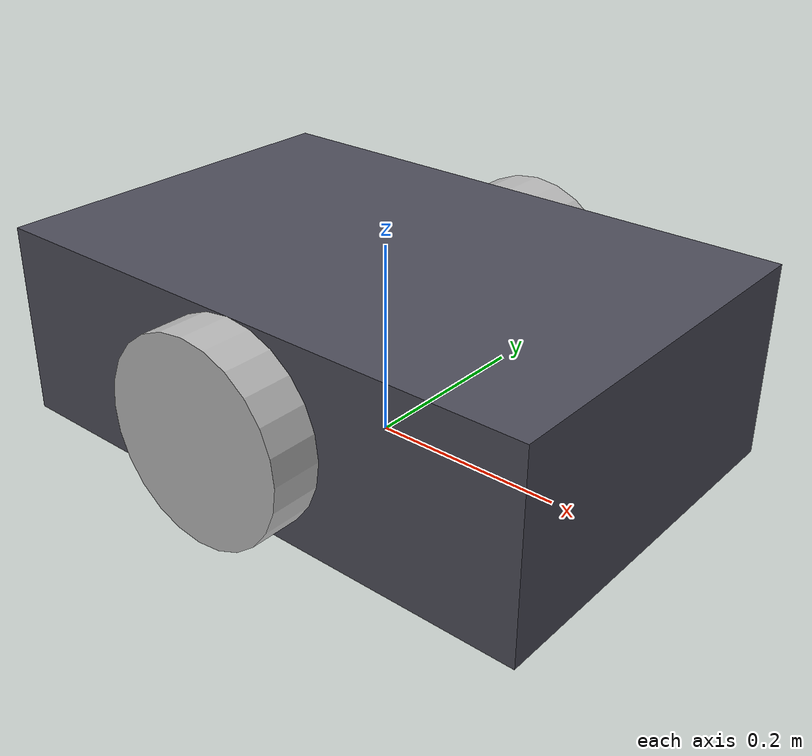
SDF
<?xml version="1.0"?>
<sdf version="1.6">
  <model name="scan_robot">
    <static>false</static>

    <link name="base_link">
      <pose>0 0 0.10 0 0 0</pose>
      <inertial>
        <mass>20.0</mass>
        <inertia>
          <ixx>0.6</ixx>
          <iyy>0.6</iyy>
          <izz>0.8</izz>
          <ixy>0.0</ixy>
          <ixz>0.0</ixz>
          <iyz>0.0</iyz>
        </inertia>
      </inertial>

      <collision name="base_collision">
        <geometry>
          <box>
            <size>0.6 0.4 0.2</size>
          </box>
        </geometry>
      </collision>

      <visual name="base_visual">
        <geometry>
          <box>
            <size>0.6 0.4 0.2</size>
          </box>
        </geometry>
        <material>
          <ambient>0.2 0.2 0.25 1</ambient>
          <diffuse>0.3 0.3 0.35 1</diffuse>
        </material>
      </visual>

      <sensor name="imu_sensor" type="imu">
        <always_on>true</always_on>
        <update_rate>200</update_rate>
        <plugin name="imu_plugin" filename="libgazebo_ros_imu_sensor.so">
          <ros>
            <remapping>~/out:=/imu/data</remapping>
          </ros>
          <frame_name>base_link</frame_name>
        </plugin>
      </sensor>
    </link>

    <link name="left_wheel">
      <pose>0 0.22 0.10 1.57079632679 0 0</pose>
      <inertial>
        <mass>1.5</mass>
        <inertia>
          <ixx>0.01</ixx>
          <iyy>0.01</iyy>
          <izz>0.01</izz>
          <ixy>0.0</ixy>
          <ixz>0.0</ixz>
          <iyz>0.0</iyz>
        </inertia>
      </inertial>
      <collision name="left_wheel_collision">
        <geometry>
          <cylinder>
            <radius>0.10</radius>
            <length>0.06</length>
          </cylinder>
        </geometry>
      </collision>
      <visual name="left_wheel_visual">
        <geometry>
          <cylinder>
            <radius>0.10</radius>
            <length>0.06</length>
          </cylinder>
        </geometry>
      </visual>
    </link>

    <link name="right_wheel">
      <pose>0 -0.22 0.10 1.57079632679 0 0</pose>
      <inertial>
        <mass>1.5</mass>
        <inertia>
          <ixx>0.01</ixx>
          <iyy>0.01</iyy>
          <izz>0.01</izz>
          <ixy>0.0</ixy>
          <ixz>0.0</ixz>
          <iyz>0.0</iyz>
        </inertia>
      </inertial>
      <collision name="right_wheel_collision">
        <geometry>
          <cylinder>
            <radius>0.10</radius>
            <length>0.06</length>
          </cylinder>
        </geometry>
      </collision>
      <visual name="right_wheel_visual">
        <geometry>
          <cylinder>
            <radius>0.10</radius>
            <length>0.06</length>
          </cylinder>
        </geometry>
      </visual>
    </link>

    <joint name="left_wheel_joint" type="revolute">
      <parent>base_link</parent>
      <child>left_wheel</child>
      <axis>
        <xyz>0 1 0</xyz>
        <limit>
          <lower>-1e16</lower>
          <upper>1e16</upper>
          <effort>50</effort>
          <velocity>50</velocity>
        </limit>
      </axis>
    </joint>

    <joint name="right_wheel_joint" type="revolute">
      <parent>base_link</parent>
      <child>right_wheel</child>
      <axis>
        <xyz>0 1 0</xyz>
        <limit>
          <lower>-1e16</lower>
          <upper>1e16</upper>
          <effort>50</effort>
          <velocity>50</velocity>
        </limit>
      </axis>
    </joint>

    <link name="lidar_link">
      <pose>0 0 0.32 0 0 0</pose>
      <inertial>
        <mass>0.5</mass>
        <inertia>
          <ixx>0.001</ixx>
          <iyy>0.001</iyy>
          <izz>0.001</izz>
          <ixy>0.0</ixy>
          <ixz>0.0</ixz>
          <iyz>0.0</iyz>
        </inertia>
      </inertial>

      <sensor name="lidar" type="ray">
        <always_on>true</always_on>
        <update_rate>10</update_rate>
        <ray>
          <scan>
            <horizontal>
              <samples>720</samples>
              <resolution>1</resolution>
              <min_angle>-3.14159</min_angle>
              <max_angle>3.14159</max_angle>
            </horizontal>
            <vertical>
              <samples>16</samples>
              <resolution>1</resolution>
              <min_angle>-0.261799</min_angle>
              <max_angle>0.261799</max_angle>
            </vertical>
          </scan>
          <range>
            <min>0.3</min>
            <max>100.0</max>
            <resolution>0.01</resolution>
          </range>
          <noise>
            <type>gaussian</type>
            <mean>0.0</mean>
            <stddev>0.01</stddev>
          </noise>
        </ray>
        <plugin name="gazebo_ros_lidar" filename="libgazebo_ros_ray_sensor.so">
          <ros>
            <remapping>~/out:=/points_raw</remapping>
          </ros>
          <frame_name>lidar_link</frame_name>
          <output_type>sensor_msgs/PointCloud2</output_type>
        </plugin>
      </sensor>
    </link>

    <joint name="lidar_joint" type="fixed">
      <parent>base_link</parent>
      <child>lidar_link</child>
    </joint>

    <plugin name="diff_drive" filename="libgazebo_ros_diff_drive.so">
      <ros>
        <remapping>cmd_vel:=/cmd_vel</remapping>
        <remapping>odom:=/odom</remapping>
      </ros>
      <publish_odom>true</publish_odom>
      <publish_odom_tf>true</publish_odom_tf>
      <odometry_topic>odom</odometry_topic>
      <odometry_frame>odom</odometry_frame>
      <robot_base_frame>base_link</robot_base_frame>
      <left_joint>left_wheel_joint</left_joint>
      <right_joint>right_wheel_joint</right_joint>
      <wheel_separation>0.44</wheel_separation>
      <wheel_diameter>0.20</wheel_diameter>
      <max_wheel_torque>60</max_wheel_torque>
      <max_wheel_acceleration>20</max_wheel_acceleration>
      <update_rate>50</update_rate>
    </plugin>
  </model>
</sdf>
